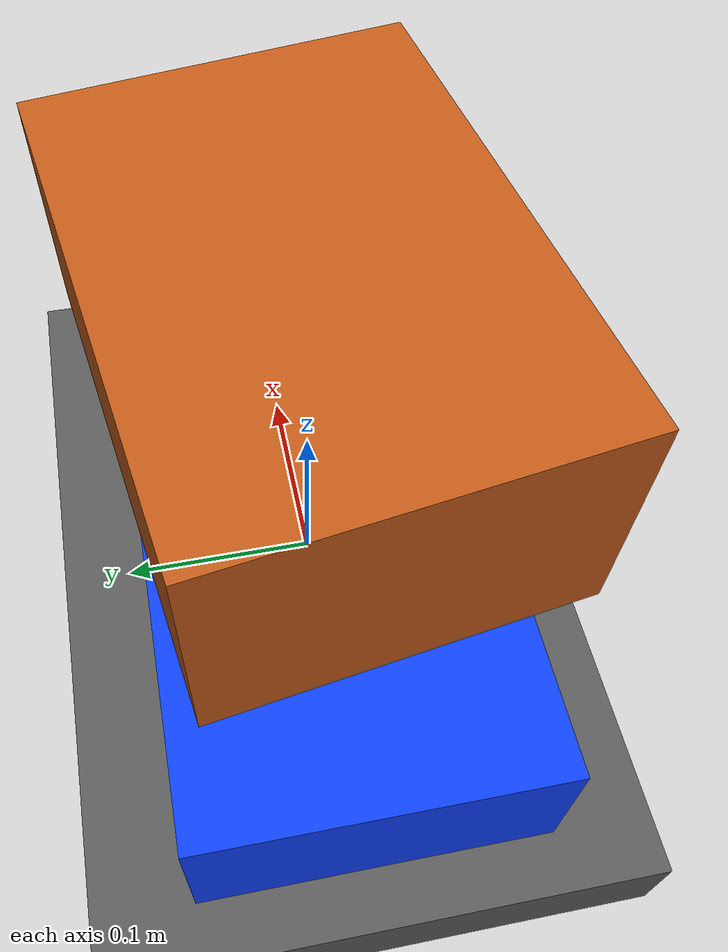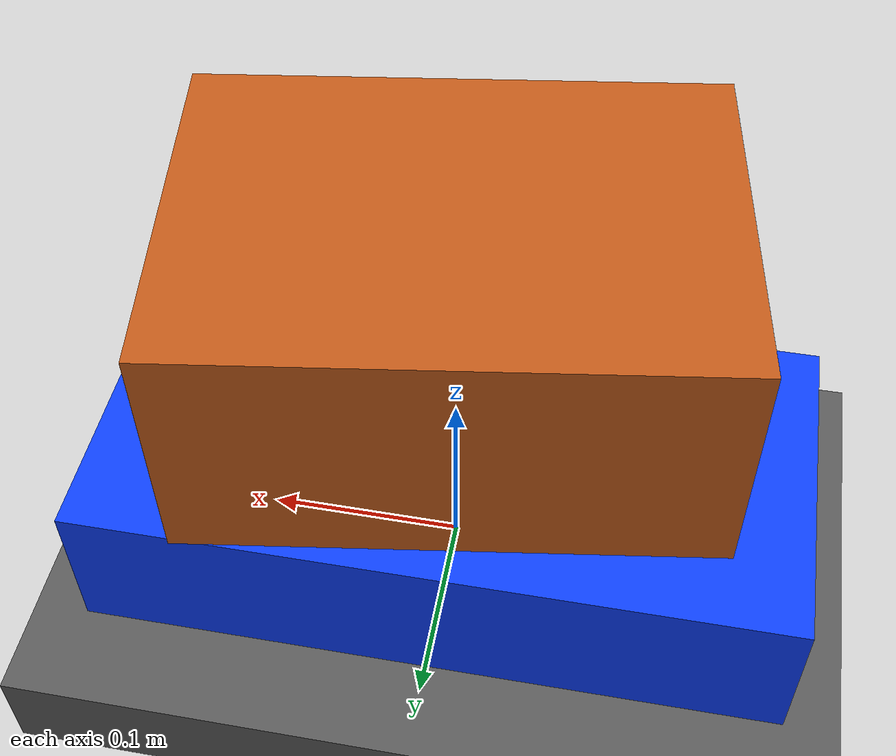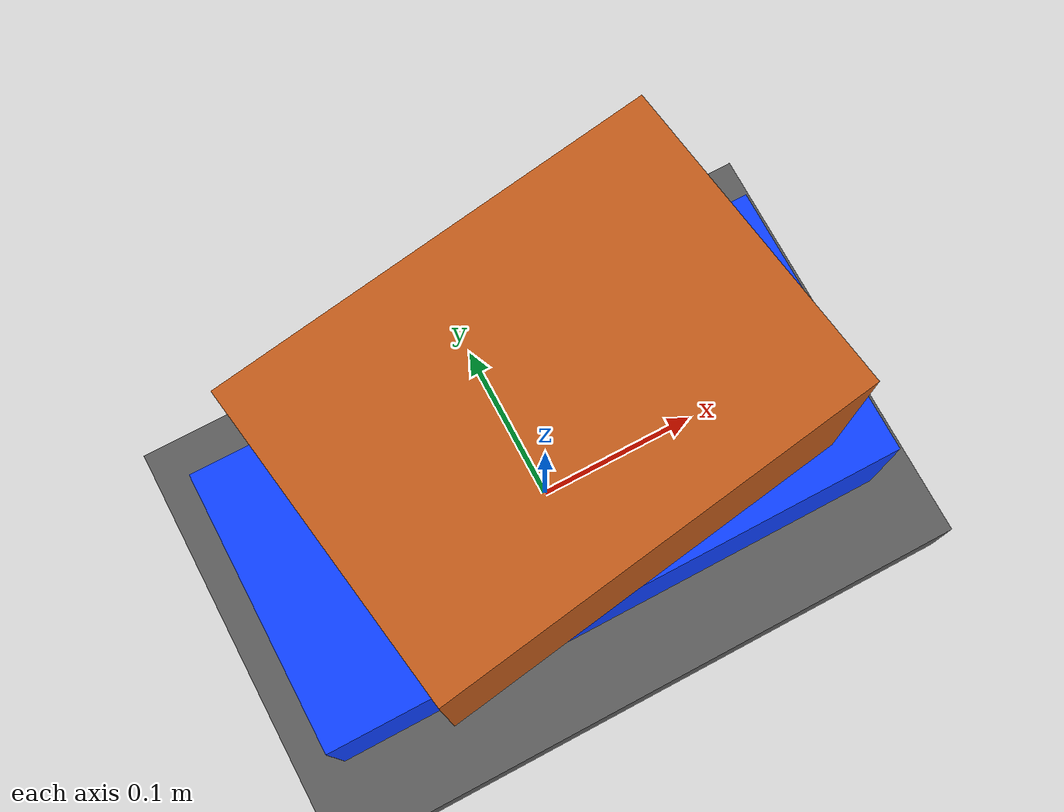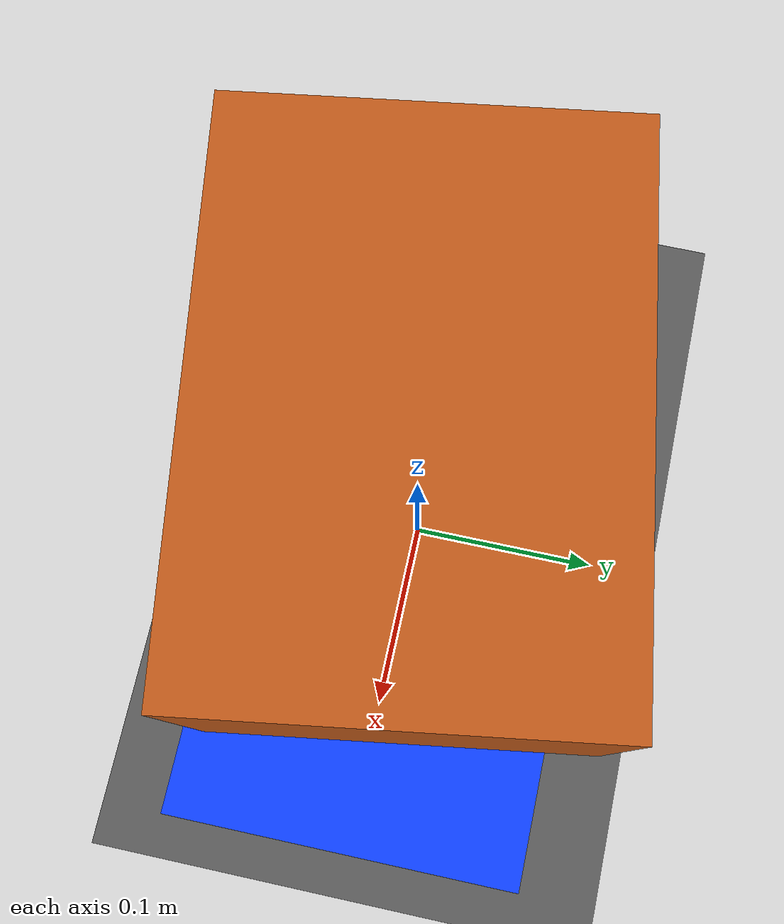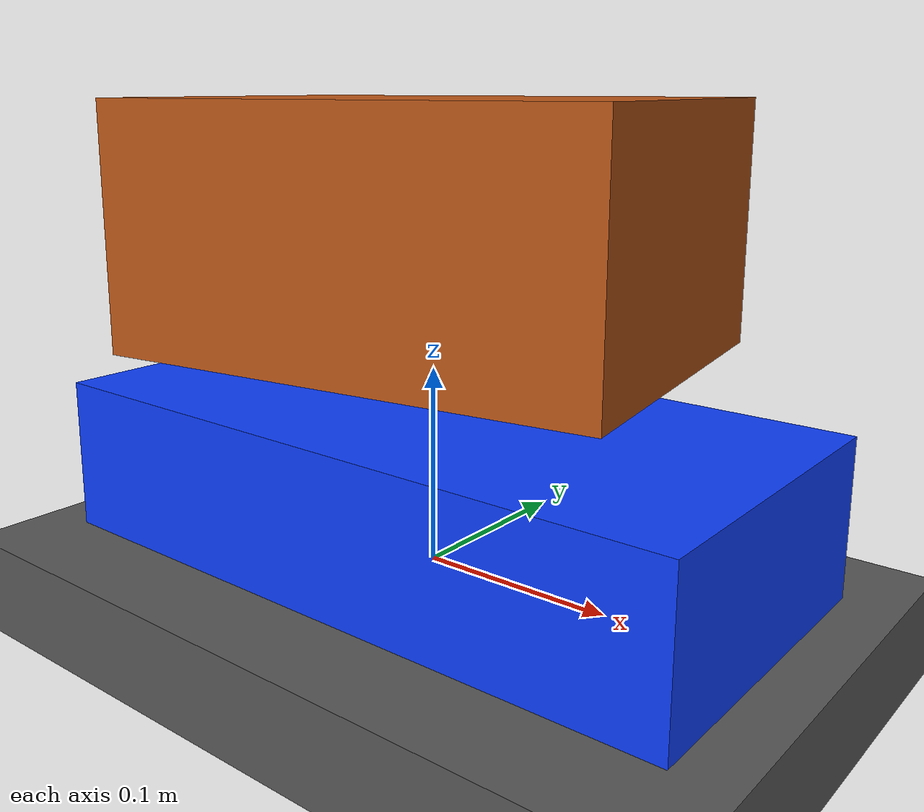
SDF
<?xml version="1.0"?>

<sdf version="1.10">
  <world name="single_cell_debug">

    <gravity>0 0 -9.81</gravity>

    <physics name="physics_1ms" type="ignored">
      <max_step_size>0.001</max_step_size>
      <real_time_factor>1.0</real_time_factor>
    </physics>

    <plugin
      filename="gz-sim-physics-system"
      name="gz::sim::systems::Physics"/>

    <plugin
      filename="gz-sim-user-commands-system"
      name="gz::sim::systems::UserCommands"/>

    <plugin
      filename="gz-sim-scene-broadcaster-system"
      name="gz::sim::systems::SceneBroadcaster"/>

    <light type="directional" name="sun">
      <pose>0 0 5 0 0 0</pose>
      <cast_shadows>true</cast_shadows>
      <diffuse>0.9 0.9 0.9 1</diffuse>
      <specular>0.2 0.2 0.2 1</specular>
      <direction>-0.3 0.2 -1.0</direction>
    </light>

    <!-- Большая серая опорная площадка -->
    <model name="platform">
      <static>true</static>

      <pose>0 0 -0.025 0 0 0</pose>

      <link name="platform_link">

        <collision name="platform_collision">
          <geometry>
            <box>
              <size>1.2 0.7 0.05</size>
            </box>
          </geometry>
        </collision>

        <visual name="platform_visual">
          <geometry>
            <box>
              <size>1.2 0.7 0.05</size>
            </box>
          </geometry>

          <material>
            <ambient>0.25 0.25 0.25 1</ambient>
            <diffuse>0.35 0.35 0.35 1</diffuse>
          </material>
        </visual>

      </link>
    </model>

    <!-- Одна синяя ячейка конвейера -->
    <model name="single_cell">
      <static>true</static>

      <link name="belt">
        <pose>0 0 0.04 0 0 0</pose>

        <collision name="belt_collision">
          <geometry>
            <box>
              <size>0.3563 0.17275 0.08</size>
            </box>
          </geometry>

          <surface>
            <friction>
              <ode>
                <mu>0.7</mu>
                <mu2>0.7</mu2>
              </ode>
            </friction>
          </surface>
        </collision>

        <visual name="belt_visual">
          <geometry>
            <box>
              <size>0.3563 0.17275 0.08</size>
            </box>
          </geometry>

          <material>
            <ambient>0.05 0.15 0.8 1</ambient>
            <diffuse>0.05 0.25 1.0 1</diffuse>
          </material>
        </visual>

      </link>

      <!-- Движущаяся контактная поверхность конвейера -->
      <plugin
        filename="gz-sim-track-controller-system"
        name="gz::sim::systems::TrackController">

        <link>belt</link>

        <!-- Поверхность движется вдоль локальной оси +X -->
        <track_orientation>0 0 0</track_orientation>

        <velocity_topic>
          /singulator/cell/r00_c00/cmd_vel
        </velocity_topic>

        <odometry_topic>
          /singulator/cell/r00_c00/odometry
        </odometry_topic>

        <odometry_publish_frequency>
          20
        </odometry_publish_frequency>

        <min_velocity>-2.0</min_velocity>
        <max_velocity>2.0</max_velocity>

        <min_acceleration>-2.5</min_acceleration>
        <max_acceleration>2.5</max_acceleration>

        <min_jerk>-10.0</min_jerk>
        <max_jerk>10.0</max_jerk>

        <!-- Если команды пропали, поверхность остановится -->
        <max_command_age>2.0</max_command_age>

        <debug>1</debug>
      </plugin>

</model>

    <!-- Коричневая динамическая коробка -->
    <model name="box_0001">
      <pose>0 0 0.17 0 0 0.15</pose>

      <link name="base_link">

        <inertial>
          <mass>1.0</mass>

          <inertia>
            <ixx>0.003900</ixx>
            <ixy>0.0</ixy>
            <ixz>0.0</ixz>

            <iyy>0.006408</iyy>
            <iyz>0.0</iyz>

            <izz>0.007908</izz>
          </inertia>
        </inertial>

        <collision name="box_collision">
          <geometry>
            <box>
              <size>0.25 0.18 0.12</size>
            </box>
          </geometry>

          <surface>
            <friction>
              <ode>
                <mu>0.7</mu>
                <mu2>0.7</mu2>
              </ode>
            </friction>
          </surface>
        </collision>

        <visual name="box_visual">
          <geometry>
            <box>
              <size>0.25 0.18 0.12</size>
            </box>
          </geometry>

          <material>
            <ambient>0.55 0.25 0.08 1</ambient>
            <diffuse>0.75 0.35 0.10 1</diffuse>
          </material>
        </visual>

      </link>
    </model>

    <gui fullscreen="0">

      <!-- Центральное окно с 3D-сценой -->
      <plugin filename="MinimalScene" name="3D View">
        <gz-gui>
          <title>3D View</title>
          <property type="bool" key="showTitleBar">false</property>
          <property type="string" key="state">docked</property>
        </gz-gui>

        <engine>ogre2</engine>
        <scene>scene</scene>

        <ambient_light>0.6 0.6 0.6</ambient_light>
        <background_color>0.8 0.8 0.8</background_color>

        <!-- Камера направлена на начало координат -->
        <camera_pose>-1.5 0 1.5 0 0.65 0</camera_pose>

        <camera_clip>
          <near>0.01</near>
          <far>1000</far>
        </camera_clip>
      </plugin>

      <!-- Передаёт сцену в окно 3D View -->
      <plugin filename="GzSceneManager" name="Scene Manager">
        <gz-gui>
          <property key="resizable" type="bool">false</property>
          <property key="width" type="double">5</property>
          <property key="height" type="double">5</property>
          <property key="state" type="string">floating</property>
          <property key="showTitleBar" type="bool">false</property>
        </gz-gui>
      </plugin>

      <!-- Дерево объектов -->
      <plugin filename="EntityTree" name="Entity tree"/>

      <!-- Кнопки запуска и остановки -->
      <plugin filename="WorldControl" name="World control"/>

      <!-- Статистика времени симуляции -->
      <plugin filename="WorldStats" name="World stats"/>

    </gui>

  </world>
</sdf>
